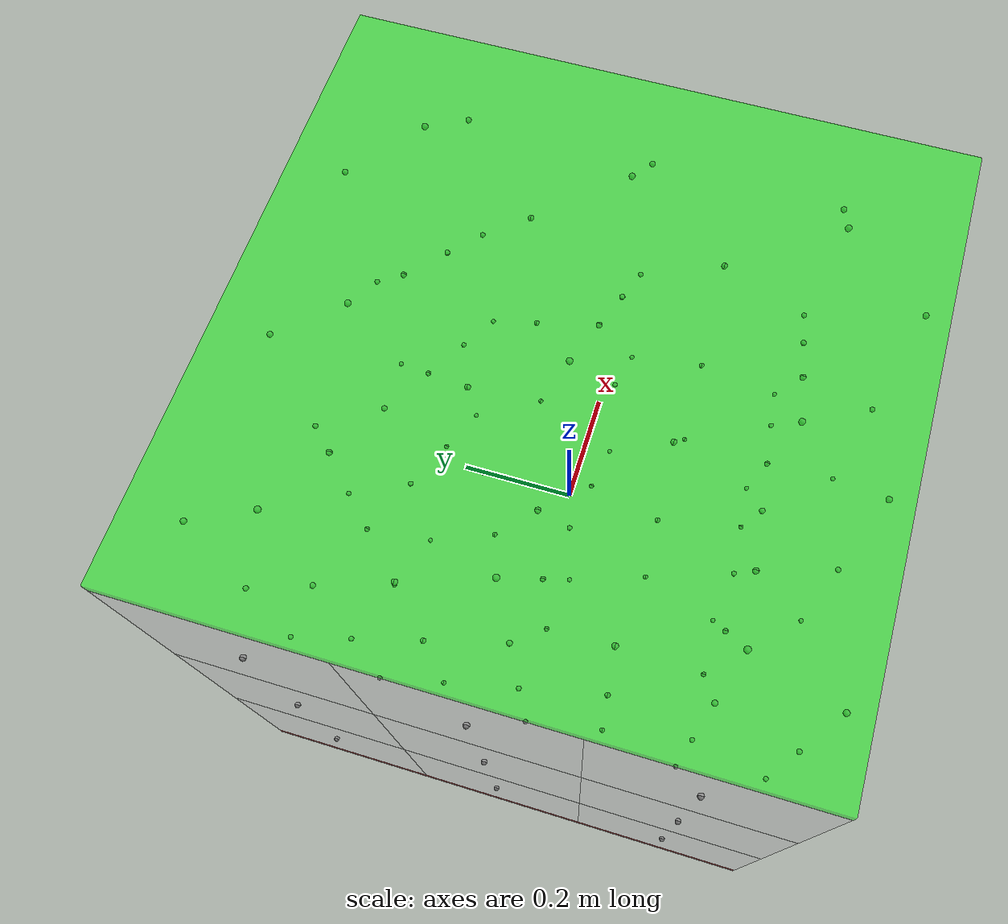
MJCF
<mujoco model="stiffness_test">
  <option integrator="implicitfast" timestep="0.001" gravity="0 0 0"><flag contact="enable"/></option>
  <default>
    <joint armature="0.01" damping="5.0"/>
    <geom friction="0.8" solref="0.02 1.0" solimp="0.9 0.95 0.001"/>
  </default>
  <worldbody>
    <light pos="0 0 5" dir="0 0 -1"/>
    <body name="BUnitBlock">
      <body name="b_bunitblock_0_0_0" pos="-0.33333 -0.33333 -0.33333">
        <joint type="slide" axis="1 0 0"/>
        <joint type="slide" axis="0 1 0"/>
        <joint type="slide" axis="0 0 1"/>
        <joint type="ball"/>
        <geom type="box" size="0.16667 0.16667 0.16667" mass="0.037036" rgba="0.9 0.9 0.9 0.5" contype="2" conaffinity="5" friction="0.8" solref="2.137679884733914 0.029221532980609206" solimp="0.006535260076180927 0.20329863348244356 0.002904285626645951 0.2325599963959532 3.3014774263521036"/>
        <site name="s_BUnitBlock_0_0_0_PX" pos="0.16667 0 0"/>
        <site name="s_BUnitBlock_0_0_0_NX" pos="-0.16667 0 0"/>
        <site name="s_BUnitBlock_0_0_0_PY" pos="0 0.16667 0"/>
        <site name="s_BUnitBlock_0_0_0_NY" pos="0 -0.16667 0"/>
        <site name="s_BUnitBlock_0_0_0_PZ" pos="0 0 0.16667"/>
        <site name="s_BUnitBlock_0_0_0_NZ" pos="0 0 -0.16667"/>
      </body>
      <body name="b_bunitblock_0_0_1" pos="-0.33333 -0.33333 0.00000">
        <joint type="slide" axis="1 0 0"/>
        <joint type="slide" axis="0 1 0"/>
        <joint type="slide" axis="0 0 1"/>
        <joint type="ball"/>
        <geom type="box" size="0.16667 0.16667 0.16667" mass="0.037037" rgba="0.9 0.9 0.9 0.5" contype="2" conaffinity="5" friction="0.8" solref="2.137679884733914 0.029221532980609206" solimp="0.006535260076180927 0.20329863348244356 0.002904285626645951 0.2325599963959532 3.3014774263521036"/>
        <site name="s_BUnitBlock_0_0_1_PX" pos="0.16667 0 0"/>
        <site name="s_BUnitBlock_0_0_1_NX" pos="-0.16667 0 0"/>
        <site name="s_BUnitBlock_0_0_1_PY" pos="0 0.16667 0"/>
        <site name="s_BUnitBlock_0_0_1_NY" pos="0 -0.16667 0"/>
        <site name="s_BUnitBlock_0_0_1_PZ" pos="0 0 0.16667"/>
        <site name="s_BUnitBlock_0_0_1_NZ" pos="0 0 -0.16667"/>
      </body>
      <body name="b_bunitblock_0_0_2" pos="-0.33333 -0.33333 0.33333">
        <joint type="slide" axis="1 0 0"/>
        <joint type="slide" axis="0 1 0"/>
        <joint type="slide" axis="0 0 1"/>
        <joint type="ball"/>
        <geom type="box" size="0.16667 0.16667 0.16667" mass="0.037036" rgba="0.9 0.9 0.9 0.5" contype="2" conaffinity="5" friction="0.8" solref="2.137679884733914 0.029221532980609206" solimp="0.006535260076180927 0.20329863348244356 0.002904285626645951 0.2325599963959532 3.3014774263521036"/>
        <site name="s_BUnitBlock_0_0_2_PX" pos="0.16667 0 0"/>
        <site name="s_BUnitBlock_0_0_2_NX" pos="-0.16667 0 0"/>
        <site name="s_BUnitBlock_0_0_2_PY" pos="0 0.16667 0"/>
        <site name="s_BUnitBlock_0_0_2_NY" pos="0 -0.16667 0"/>
        <site name="s_BUnitBlock_0_0_2_PZ" pos="0 0 0.16667"/>
        <site name="s_BUnitBlock_0_0_2_NZ" pos="0 0 -0.16667"/>
      </body>
      <body name="b_bunitblock_0_1_0" pos="-0.33333 0.00000 -0.33333">
        <joint type="slide" axis="1 0 0"/>
        <joint type="slide" axis="0 1 0"/>
        <joint type="slide" axis="0 0 1"/>
        <joint type="ball"/>
        <geom type="box" size="0.16667 0.16667 0.16667" mass="0.037037" rgba="0.9 0.9 0.9 0.5" contype="2" conaffinity="5" friction="0.8" solref="2.137679884733914 0.029221532980609206" solimp="0.006535260076180927 0.20329863348244356 0.002904285626645951 0.2325599963959532 3.3014774263521036"/>
        <site name="s_BUnitBlock_0_1_0_PX" pos="0.16667 0 0"/>
        <site name="s_BUnitBlock_0_1_0_NX" pos="-0.16667 0 0"/>
        <site name="s_BUnitBlock_0_1_0_PY" pos="0 0.16667 0"/>
        <site name="s_BUnitBlock_0_1_0_NY" pos="0 -0.16667 0"/>
        <site name="s_BUnitBlock_0_1_0_PZ" pos="0 0 0.16667"/>
        <site name="s_BUnitBlock_0_1_0_NZ" pos="0 0 -0.16667"/>
      </body>
      <body name="b_bunitblock_0_1_1" pos="-0.33333 0.00000 0.00000">
        <joint type="slide" axis="1 0 0"/>
        <joint type="slide" axis="0 1 0"/>
        <joint type="slide" axis="0 0 1"/>
        <joint type="ball"/>
        <geom type="box" size="0.16667 0.16667 0.16667" mass="0.037038" rgba="0.9 0.9 0.9 0.5" contype="2" conaffinity="5" friction="0.8" solref="2.137679884733914 0.029221532980609206" solimp="0.006535260076180927 0.20329863348244356 0.002904285626645951 0.2325599963959532 3.3014774263521036"/>
        <site name="s_BUnitBlock_0_1_1_PX" pos="0.16667 0 0"/>
        <site name="s_BUnitBlock_0_1_1_NX" pos="-0.16667 0 0"/>
        <site name="s_BUnitBlock_0_1_1_PY" pos="0 0.16667 0"/>
        <site name="s_BUnitBlock_0_1_1_NY" pos="0 -0.16667 0"/>
        <site name="s_BUnitBlock_0_1_1_PZ" pos="0 0 0.16667"/>
        <site name="s_BUnitBlock_0_1_1_NZ" pos="0 0 -0.16667"/>
      </body>
      <body name="b_bunitblock_0_1_2" pos="-0.33333 0.00000 0.33333">
        <joint type="slide" axis="1 0 0"/>
        <joint type="slide" axis="0 1 0"/>
        <joint type="slide" axis="0 0 1"/>
        <joint type="ball"/>
        <geom type="box" size="0.16667 0.16667 0.16667" mass="0.037037" rgba="0.9 0.9 0.9 0.5" contype="2" conaffinity="5" friction="0.8" solref="2.137679884733914 0.029221532980609206" solimp="0.006535260076180927 0.20329863348244356 0.002904285626645951 0.2325599963959532 3.3014774263521036"/>
        <site name="s_BUnitBlock_0_1_2_PX" pos="0.16667 0 0"/>
        <site name="s_BUnitBlock_0_1_2_NX" pos="-0.16667 0 0"/>
        <site name="s_BUnitBlock_0_1_2_PY" pos="0 0.16667 0"/>
        <site name="s_BUnitBlock_0_1_2_NY" pos="0 -0.16667 0"/>
        <site name="s_BUnitBlock_0_1_2_PZ" pos="0 0 0.16667"/>
        <site name="s_BUnitBlock_0_1_2_NZ" pos="0 0 -0.16667"/>
      </body>
      <body name="b_bunitblock_0_2_0" pos="-0.33333 0.33333 -0.33333">
        <joint type="slide" axis="1 0 0"/>
        <joint type="slide" axis="0 1 0"/>
        <joint type="slide" axis="0 0 1"/>
        <joint type="ball"/>
        <geom type="box" size="0.16667 0.16667 0.16667" mass="0.037036" rgba="0.9 0.9 0.9 0.5" contype="2" conaffinity="5" friction="0.8" solref="2.137679884733914 0.029221532980609206" solimp="0.006535260076180927 0.20329863348244356 0.002904285626645951 0.2325599963959532 3.3014774263521036"/>
        <site name="s_BUnitBlock_0_2_0_PX" pos="0.16667 0 0"/>
        <site name="s_BUnitBlock_0_2_0_NX" pos="-0.16667 0 0"/>
        <site name="s_BUnitBlock_0_2_0_PY" pos="0 0.16667 0"/>
        <site name="s_BUnitBlock_0_2_0_NY" pos="0 -0.16667 0"/>
        <site name="s_BUnitBlock_0_2_0_PZ" pos="0 0 0.16667"/>
        <site name="s_BUnitBlock_0_2_0_NZ" pos="0 0 -0.16667"/>
      </body>
      <body name="b_bunitblock_0_2_1" pos="-0.33333 0.33333 0.00000">
        <joint type="slide" axis="1 0 0"/>
        <joint type="slide" axis="0 1 0"/>
        <joint type="slide" axis="0 0 1"/>
        <joint type="ball"/>
        <geom type="box" size="0.16667 0.16667 0.16667" mass="0.037037" rgba="0.9 0.9 0.9 0.5" contype="2" conaffinity="5" friction="0.8" solref="2.137679884733914 0.029221532980609206" solimp="0.006535260076180927 0.20329863348244356 0.002904285626645951 0.2325599963959532 3.3014774263521036"/>
        <site name="s_BUnitBlock_0_2_1_PX" pos="0.16667 0 0"/>
        <site name="s_BUnitBlock_0_2_1_NX" pos="-0.16667 0 0"/>
        <site name="s_BUnitBlock_0_2_1_PY" pos="0 0.16667 0"/>
        <site name="s_BUnitBlock_0_2_1_NY" pos="0 -0.16667 0"/>
        <site name="s_BUnitBlock_0_2_1_PZ" pos="0 0 0.16667"/>
        <site name="s_BUnitBlock_0_2_1_NZ" pos="0 0 -0.16667"/>
      </body>
      <body name="b_bunitblock_0_2_2" pos="-0.33333 0.33333 0.33333">
        <joint type="slide" axis="1 0 0"/>
        <joint type="slide" axis="0 1 0"/>
        <joint type="slide" axis="0 0 1"/>
        <joint type="ball"/>
        <geom type="box" size="0.16667 0.16667 0.16667" mass="0.037036" rgba="0.9 0.9 0.9 0.5" contype="2" conaffinity="5" friction="0.8" solref="2.137679884733914 0.029221532980609206" solimp="0.006535260076180927 0.20329863348244356 0.002904285626645951 0.2325599963959532 3.3014774263521036"/>
        <site name="s_BUnitBlock_0_2_2_PX" pos="0.16667 0 0"/>
        <site name="s_BUnitBlock_0_2_2_NX" pos="-0.16667 0 0"/>
        <site name="s_BUnitBlock_0_2_2_PY" pos="0 0.16667 0"/>
        <site name="s_BUnitBlock_0_2_2_NY" pos="0 -0.16667 0"/>
        <site name="s_BUnitBlock_0_2_2_PZ" pos="0 0 0.16667"/>
        <site name="s_BUnitBlock_0_2_2_NZ" pos="0 0 -0.16667"/>
      </body>
      <body name="b_bunitblock_1_0_0" pos="0.00000 -0.33333 -0.33333">
        <joint type="slide" axis="1 0 0"/>
        <joint type="slide" axis="0 1 0"/>
        <joint type="slide" axis="0 0 1"/>
        <joint type="ball"/>
        <geom type="box" size="0.16667 0.16667 0.16667" mass="0.037037" rgba="0.9 0.9 0.9 0.5" contype="2" conaffinity="5" friction="0.8" solref="2.137679884733914 0.029221532980609206" solimp="0.006535260076180927 0.20329863348244356 0.002904285626645951 0.2325599963959532 3.3014774263521036"/>
        <site name="s_BUnitBlock_1_0_0_PX" pos="0.16667 0 0"/>
        <site name="s_BUnitBlock_1_0_0_NX" pos="-0.16667 0 0"/>
        <site name="s_BUnitBlock_1_0_0_PY" pos="0 0.16667 0"/>
        <site name="s_BUnitBlock_1_0_0_NY" pos="0 -0.16667 0"/>
        <site name="s_BUnitBlock_1_0_0_PZ" pos="0 0 0.16667"/>
        <site name="s_BUnitBlock_1_0_0_NZ" pos="0 0 -0.16667"/>
      </body>
      <body name="b_bunitblock_1_0_1" pos="0.00000 -0.33333 0.00000">
        <joint type="slide" axis="1 0 0"/>
        <joint type="slide" axis="0 1 0"/>
        <joint type="slide" axis="0 0 1"/>
        <joint type="ball"/>
        <geom type="box" size="0.16667 0.16667 0.16667" mass="0.037038" rgba="0.9 0.9 0.9 0.5" contype="2" conaffinity="5" friction="0.8" solref="2.137679884733914 0.029221532980609206" solimp="0.006535260076180927 0.20329863348244356 0.002904285626645951 0.2325599963959532 3.3014774263521036"/>
        <site name="s_BUnitBlock_1_0_1_PX" pos="0.16667 0 0"/>
        <site name="s_BUnitBlock_1_0_1_NX" pos="-0.16667 0 0"/>
        <site name="s_BUnitBlock_1_0_1_PY" pos="0 0.16667 0"/>
        <site name="s_BUnitBlock_1_0_1_NY" pos="0 -0.16667 0"/>
        <site name="s_BUnitBlock_1_0_1_PZ" pos="0 0 0.16667"/>
        <site name="s_BUnitBlock_1_0_1_NZ" pos="0 0 -0.16667"/>
      </body>
      <body name="b_bunitblock_1_0_2" pos="0.00000 -0.33333 0.33333">
        <joint type="slide" axis="1 0 0"/>
        <joint type="slide" axis="0 1 0"/>
        <joint type="slide" axis="0 0 1"/>
        <joint type="ball"/>
        <geom type="box" size="0.16667 0.16667 0.16667" mass="0.037037" rgba="0.9 0.9 0.9 0.5" contype="2" conaffinity="5" friction="0.8" solref="2.137679884733914 0.029221532980609206" solimp="0.006535260076180927 0.20329863348244356 0.002904285626645951 0.2325599963959532 3.3014774263521036"/>
        <site name="s_BUnitBlock_1_0_2_PX" pos="0.16667 0 0"/>
        <site name="s_BUnitBlock_1_0_2_NX" pos="-0.16667 0 0"/>
        <site name="s_BUnitBlock_1_0_2_PY" pos="0 0.16667 0"/>
        <site name="s_BUnitBlock_1_0_2_NY" pos="0 -0.16667 0"/>
        <site name="s_BUnitBlock_1_0_2_PZ" pos="0 0 0.16667"/>
        <site name="s_BUnitBlock_1_0_2_NZ" pos="0 0 -0.16667"/>
      </body>
      <body name="b_bunitblock_1_1_0" pos="0.00000 0.00000 -0.33333">
        <joint type="slide" axis="1 0 0"/>
        <joint type="slide" axis="0 1 0"/>
        <joint type="slide" axis="0 0 1"/>
        <joint type="ball"/>
        <geom type="box" size="0.16667 0.16667 0.16667" mass="0.037038" rgba="0.9 0.9 0.9 0.5" contype="2" conaffinity="5" friction="0.8" solref="2.137679884733914 0.029221532980609206" solimp="0.006535260076180927 0.20329863348244356 0.002904285626645951 0.2325599963959532 3.3014774263521036"/>
        <site name="s_BUnitBlock_1_1_0_PX" pos="0.16667 0 0"/>
        <site name="s_BUnitBlock_1_1_0_NX" pos="-0.16667 0 0"/>
        <site name="s_BUnitBlock_1_1_0_PY" pos="0 0.16667 0"/>
        <site name="s_BUnitBlock_1_1_0_NY" pos="0 -0.16667 0"/>
        <site name="s_BUnitBlock_1_1_0_PZ" pos="0 0 0.16667"/>
        <site name="s_BUnitBlock_1_1_0_NZ" pos="0 0 -0.16667"/>
      </body>
      <body name="b_bunitblock_1_1_1" pos="0.00000 0.00000 0.00000">
        <joint type="slide" axis="1 0 0"/>
        <joint type="slide" axis="0 1 0"/>
        <joint type="slide" axis="0 0 1"/>
        <joint type="ball"/>
        <geom type="box" size="0.16667 0.16667 0.16667" mass="0.037039" rgba="0.9 0.9 0.9 0.5" contype="2" conaffinity="5" friction="0.8" solref="2.137679884733914 0.029221532980609206" solimp="0.006535260076180927 0.20329863348244356 0.002904285626645951 0.2325599963959532 3.3014774263521036"/>
        <site name="s_BUnitBlock_1_1_1_PX" pos="0.16667 0 0"/>
        <site name="s_BUnitBlock_1_1_1_NX" pos="-0.16667 0 0"/>
        <site name="s_BUnitBlock_1_1_1_PY" pos="0 0.16667 0"/>
        <site name="s_BUnitBlock_1_1_1_NY" pos="0 -0.16667 0"/>
        <site name="s_BUnitBlock_1_1_1_PZ" pos="0 0 0.16667"/>
        <site name="s_BUnitBlock_1_1_1_NZ" pos="0 0 -0.16667"/>
      </body>
      <body name="b_bunitblock_1_1_2" pos="0.00000 0.00000 0.33333">
        <joint type="slide" axis="1 0 0"/>
        <joint type="slide" axis="0 1 0"/>
        <joint type="slide" axis="0 0 1"/>
        <joint type="ball"/>
        <geom type="box" size="0.16667 0.16667 0.16667" mass="0.037038" rgba="0.9 0.9 0.9 0.5" contype="2" conaffinity="5" friction="0.8" solref="2.137679884733914 0.029221532980609206" solimp="0.006535260076180927 0.20329863348244356 0.002904285626645951 0.2325599963959532 3.3014774263521036"/>
        <site name="s_BUnitBlock_1_1_2_PX" pos="0.16667 0 0"/>
        <site name="s_BUnitBlock_1_1_2_NX" pos="-0.16667 0 0"/>
        <site name="s_BUnitBlock_1_1_2_PY" pos="0 0.16667 0"/>
        <site name="s_BUnitBlock_1_1_2_NY" pos="0 -0.16667 0"/>
        <site name="s_BUnitBlock_1_1_2_PZ" pos="0 0 0.16667"/>
        <site name="s_BUnitBlock_1_1_2_NZ" pos="0 0 -0.16667"/>
      </body>
      <body name="b_bunitblock_1_2_0" pos="0.00000 0.33333 -0.33333">
        <joint type="slide" axis="1 0 0"/>
        <joint type="slide" axis="0 1 0"/>
        <joint type="slide" axis="0 0 1"/>
        <joint type="ball"/>
        <geom type="box" size="0.16667 0.16667 0.16667" mass="0.037037" rgba="0.9 0.9 0.9 0.5" contype="2" conaffinity="5" friction="0.8" solref="2.137679884733914 0.029221532980609206" solimp="0.006535260076180927 0.20329863348244356 0.002904285626645951 0.2325599963959532 3.3014774263521036"/>
        <site name="s_BUnitBlock_1_2_0_PX" pos="0.16667 0 0"/>
        <site name="s_BUnitBlock_1_2_0_NX" pos="-0.16667 0 0"/>
        <site name="s_BUnitBlock_1_2_0_PY" pos="0 0.16667 0"/>
        <site name="s_BUnitBlock_1_2_0_NY" pos="0 -0.16667 0"/>
        <site name="s_BUnitBlock_1_2_0_PZ" pos="0 0 0.16667"/>
        <site name="s_BUnitBlock_1_2_0_NZ" pos="0 0 -0.16667"/>
      </body>
      <body name="b_bunitblock_1_2_1" pos="0.00000 0.33333 0.00000">
        <joint type="slide" axis="1 0 0"/>
        <joint type="slide" axis="0 1 0"/>
        <joint type="slide" axis="0 0 1"/>
        <joint type="ball"/>
        <geom type="box" size="0.16667 0.16667 0.16667" mass="0.037038" rgba="0.9 0.9 0.9 0.5" contype="2" conaffinity="5" friction="0.8" solref="2.137679884733914 0.029221532980609206" solimp="0.006535260076180927 0.20329863348244356 0.002904285626645951 0.2325599963959532 3.3014774263521036"/>
        <site name="s_BUnitBlock_1_2_1_PX" pos="0.16667 0 0"/>
        <site name="s_BUnitBlock_1_2_1_NX" pos="-0.16667 0 0"/>
        <site name="s_BUnitBlock_1_2_1_PY" pos="0 0.16667 0"/>
        <site name="s_BUnitBlock_1_2_1_NY" pos="0 -0.16667 0"/>
        <site name="s_BUnitBlock_1_2_1_PZ" pos="0 0 0.16667"/>
        <site name="s_BUnitBlock_1_2_1_NZ" pos="0 0 -0.16667"/>
      </body>
      <body name="b_bunitblock_1_2_2" pos="0.00000 0.33333 0.33333">
        <joint type="slide" axis="1 0 0"/>
        <joint type="slide" axis="0 1 0"/>
        <joint type="slide" axis="0 0 1"/>
        <joint type="ball"/>
        <geom type="box" size="0.16667 0.16667 0.16667" mass="0.037037" rgba="0.9 0.9 0.9 0.5" contype="2" conaffinity="5" friction="0.8" solref="2.137679884733914 0.029221532980609206" solimp="0.006535260076180927 0.20329863348244356 0.002904285626645951 0.2325599963959532 3.3014774263521036"/>
        <site name="s_BUnitBlock_1_2_2_PX" pos="0.16667 0 0"/>
        <site name="s_BUnitBlock_1_2_2_NX" pos="-0.16667 0 0"/>
        <site name="s_BUnitBlock_1_2_2_PY" pos="0 0.16667 0"/>
        <site name="s_BUnitBlock_1_2_2_NY" pos="0 -0.16667 0"/>
        <site name="s_BUnitBlock_1_2_2_PZ" pos="0 0 0.16667"/>
        <site name="s_BUnitBlock_1_2_2_NZ" pos="0 0 -0.16667"/>
      </body>
      <body name="b_bunitblock_2_0_0" pos="0.33333 -0.33333 -0.33333">
        <joint type="slide" axis="1 0 0"/>
        <joint type="slide" axis="0 1 0"/>
        <joint type="slide" axis="0 0 1"/>
        <joint type="ball"/>
        <geom type="box" size="0.16667 0.16667 0.16667" mass="0.037036" rgba="0.9 0.9 0.9 0.5" contype="2" conaffinity="5" friction="0.8" solref="2.137679884733914 0.029221532980609206" solimp="0.006535260076180927 0.20329863348244356 0.002904285626645951 0.2325599963959532 3.3014774263521036"/>
        <site name="s_BUnitBlock_2_0_0_PX" pos="0.16667 0 0"/>
        <site name="s_BUnitBlock_2_0_0_NX" pos="-0.16667 0 0"/>
        <site name="s_BUnitBlock_2_0_0_PY" pos="0 0.16667 0"/>
        <site name="s_BUnitBlock_2_0_0_NY" pos="0 -0.16667 0"/>
        <site name="s_BUnitBlock_2_0_0_PZ" pos="0 0 0.16667"/>
        <site name="s_BUnitBlock_2_0_0_NZ" pos="0 0 -0.16667"/>
      </body>
      <body name="b_bunitblock_2_0_1" pos="0.33333 -0.33333 0.00000">
        <joint type="slide" axis="1 0 0"/>
        <joint type="slide" axis="0 1 0"/>
        <joint type="slide" axis="0 0 1"/>
        <joint type="ball"/>
        <geom type="box" size="0.16667 0.16667 0.16667" mass="0.037037" rgba="0.9 0.9 0.9 0.5" contype="2" conaffinity="5" friction="0.8" solref="2.137679884733914 0.029221532980609206" solimp="0.006535260076180927 0.20329863348244356 0.002904285626645951 0.2325599963959532 3.3014774263521036"/>
        <site name="s_BUnitBlock_2_0_1_PX" pos="0.16667 0 0"/>
        <site name="s_BUnitBlock_2_0_1_NX" pos="-0.16667 0 0"/>
        <site name="s_BUnitBlock_2_0_1_PY" pos="0 0.16667 0"/>
        <site name="s_BUnitBlock_2_0_1_NY" pos="0 -0.16667 0"/>
        <site name="s_BUnitBlock_2_0_1_PZ" pos="0 0 0.16667"/>
        <site name="s_BUnitBlock_2_0_1_NZ" pos="0 0 -0.16667"/>
      </body>
      <body name="b_bunitblock_2_0_2" pos="0.33333 -0.33333 0.33333">
        <joint type="slide" axis="1 0 0"/>
        <joint type="slide" axis="0 1 0"/>
        <joint type="slide" axis="0 0 1"/>
        <joint type="ball"/>
        <geom type="box" size="0.16667 0.16667 0.16667" mass="0.037036" rgba="0.9 0.9 0.9 0.5" contype="2" conaffinity="5" friction="0.8" solref="2.137679884733914 0.029221532980609206" solimp="0.006535260076180927 0.20329863348244356 0.002904285626645951 0.2325599963959532 3.3014774263521036"/>
        <site name="s_BUnitBlock_2_0_2_PX" pos="0.16667 0 0"/>
        <site name="s_BUnitBlock_2_0_2_NX" pos="-0.16667 0 0"/>
        <site name="s_BUnitBlock_2_0_2_PY" pos="0 0.16667 0"/>
        <site name="s_BUnitBlock_2_0_2_NY" pos="0 -0.16667 0"/>
        <site name="s_BUnitBlock_2_0_2_PZ" pos="0 0 0.16667"/>
        <site name="s_BUnitBlock_2_0_2_NZ" pos="0 0 -0.16667"/>
      </body>
      <body name="b_bunitblock_2_1_0" pos="0.33333 0.00000 -0.33333">
        <joint type="slide" axis="1 0 0"/>
        <joint type="slide" axis="0 1 0"/>
        <joint type="slide" axis="0 0 1"/>
        <joint type="ball"/>
        <geom type="box" size="0.16667 0.16667 0.16667" mass="0.037037" rgba="0.9 0.9 0.9 0.5" contype="2" conaffinity="5" friction="0.8" solref="2.137679884733914 0.029221532980609206" solimp="0.006535260076180927 0.20329863348244356 0.002904285626645951 0.2325599963959532 3.3014774263521036"/>
        <site name="s_BUnitBlock_2_1_0_PX" pos="0.16667 0 0"/>
        <site name="s_BUnitBlock_2_1_0_NX" pos="-0.16667 0 0"/>
        <site name="s_BUnitBlock_2_1_0_PY" pos="0 0.16667 0"/>
        <site name="s_BUnitBlock_2_1_0_NY" pos="0 -0.16667 0"/>
        <site name="s_BUnitBlock_2_1_0_PZ" pos="0 0 0.16667"/>
        <site name="s_BUnitBlock_2_1_0_NZ" pos="0 0 -0.16667"/>
      </body>
      <body name="b_bunitblock_2_1_1" pos="0.33333 0.00000 0.00000">
        <joint type="slide" axis="1 0 0"/>
        <joint type="slide" axis="0 1 0"/>
        <joint type="slide" axis="0 0 1"/>
        <joint type="ball"/>
        <geom type="box" size="0.16667 0.16667 0.16667" mass="0.037038" rgba="0.9 0.9 0.9 0.5" contype="2" conaffinity="5" friction="0.8" solref="2.137679884733914 0.029221532980609206" solimp="0.006535260076180927 0.20329863348244356 0.002904285626645951 0.2325599963959532 3.3014774263521036"/>
        <site name="s_BUnitBlock_2_1_1_PX" pos="0.16667 0 0"/>
        <site name="s_BUnitBlock_2_1_1_NX" pos="-0.16667 0 0"/>
        <site name="s_BUnitBlock_2_1_1_PY" pos="0 0.16667 0"/>
        <site name="s_BUnitBlock_2_1_1_NY" pos="0 -0.16667 0"/>
        <site name="s_BUnitBlock_2_1_1_PZ" pos="0 0 0.16667"/>
        <site name="s_BUnitBlock_2_1_1_NZ" pos="0 0 -0.16667"/>
      </body>
      <body name="b_bunitblock_2_1_2" pos="0.33333 0.00000 0.33333">
        <joint type="slide" axis="1 0 0"/>
        <joint type="slide" axis="0 1 0"/>
        <joint type="slide" axis="0 0 1"/>
        <joint type="ball"/>
        <geom type="box" size="0.16667 0.16667 0.16667" mass="0.037037" rgba="0.9 0.9 0.9 0.5" contype="2" conaffinity="5" friction="0.8" solref="2.137679884733914 0.029221532980609206" solimp="0.006535260076180927 0.20329863348244356 0.002904285626645951 0.2325599963959532 3.3014774263521036"/>
        <site name="s_BUnitBlock_2_1_2_PX" pos="0.16667 0 0"/>
        <site name="s_BUnitBlock_2_1_2_NX" pos="-0.16667 0 0"/>
        <site name="s_BUnitBlock_2_1_2_PY" pos="0 0.16667 0"/>
        <site name="s_BUnitBlock_2_1_2_NY" pos="0 -0.16667 0"/>
        <site name="s_BUnitBlock_2_1_2_PZ" pos="0 0 0.16667"/>
        <site name="s_BUnitBlock_2_1_2_NZ" pos="0 0 -0.16667"/>
      </body>
      <body name="b_bunitblock_2_2_0" pos="0.33333 0.33333 -0.33333">
        <joint type="slide" axis="1 0 0"/>
        <joint type="slide" axis="0 1 0"/>
        <joint type="slide" axis="0 0 1"/>
        <joint type="ball"/>
        <geom type="box" size="0.16667 0.16667 0.16667" mass="0.037036" rgba="0.9 0.9 0.9 0.5" contype="2" conaffinity="5" friction="0.8" solref="2.137679884733914 0.029221532980609206" solimp="0.006535260076180927 0.20329863348244356 0.002904285626645951 0.2325599963959532 3.3014774263521036"/>
        <site name="s_BUnitBlock_2_2_0_PX" pos="0.16667 0 0"/>
        <site name="s_BUnitBlock_2_2_0_NX" pos="-0.16667 0 0"/>
        <site name="s_BUnitBlock_2_2_0_PY" pos="0 0.16667 0"/>
        <site name="s_BUnitBlock_2_2_0_NY" pos="0 -0.16667 0"/>
        <site name="s_BUnitBlock_2_2_0_PZ" pos="0 0 0.16667"/>
        <site name="s_BUnitBlock_2_2_0_NZ" pos="0 0 -0.16667"/>
      </body>
      <body name="b_bunitblock_2_2_1" pos="0.33333 0.33333 0.00000">
        <joint type="slide" axis="1 0 0"/>
        <joint type="slide" axis="0 1 0"/>
        <joint type="slide" axis="0 0 1"/>
        <joint type="ball"/>
        <geom type="box" size="0.16667 0.16667 0.16667" mass="0.037037" rgba="0.9 0.9 0.9 0.5" contype="2" conaffinity="5" friction="0.8" solref="2.137679884733914 0.029221532980609206" solimp="0.006535260076180927 0.20329863348244356 0.002904285626645951 0.2325599963959532 3.3014774263521036"/>
        <site name="s_BUnitBlock_2_2_1_PX" pos="0.16667 0 0"/>
        <site name="s_BUnitBlock_2_2_1_NX" pos="-0.16667 0 0"/>
        <site name="s_BUnitBlock_2_2_1_PY" pos="0 0.16667 0"/>
        <site name="s_BUnitBlock_2_2_1_NY" pos="0 -0.16667 0"/>
        <site name="s_BUnitBlock_2_2_1_PZ" pos="0 0 0.16667"/>
        <site name="s_BUnitBlock_2_2_1_NZ" pos="0 0 -0.16667"/>
      </body>
      <body name="b_bunitblock_2_2_2" pos="0.33333 0.33333 0.33333">
        <joint type="slide" axis="1 0 0"/>
        <joint type="slide" axis="0 1 0"/>
        <joint type="slide" axis="0 0 1"/>
        <joint type="ball"/>
        <geom type="box" size="0.16667 0.16667 0.16667" mass="0.037036" rgba="0.9 0.9 0.9 0.5" contype="2" conaffinity="5" friction="0.8" solref="2.137679884733914 0.029221532980609206" solimp="0.006535260076180927 0.20329863348244356 0.002904285626645951 0.2325599963959532 3.3014774263521036"/>
        <site name="s_BUnitBlock_2_2_2_PX" pos="0.16667 0 0"/>
        <site name="s_BUnitBlock_2_2_2_NX" pos="-0.16667 0 0"/>
        <site name="s_BUnitBlock_2_2_2_PY" pos="0 0.16667 0"/>
        <site name="s_BUnitBlock_2_2_2_NY" pos="0 -0.16667 0"/>
        <site name="s_BUnitBlock_2_2_2_PZ" pos="0 0 0.16667"/>
        <site name="s_BUnitBlock_2_2_2_NZ" pos="0 0 -0.16667"/>
      </body>
    </body>
    <body name="clamp_B" pos="0 0 -0.511"><geom type="box" size="0.5 0.5 0.01" rgba="1 0 0 0.5" contype="0" conaffinity="0"/></body>
    <body name="ram" pos="0 0 0.511">
      <joint name="ram_z" type="slide" axis="0 0 1"/>
      <geom type="box" size="0.5 0.5 0.01" rgba="0 1 0 0.5" contype="0" conaffinity="0"/>
    </body>
  </worldbody>
  <actuator>
    <position name="act_ram" joint="ram_z" kp="200000000" kv="100000"/>
  </actuator>
  <equality>
        <weld site1="s_BUnitBlock_0_0_0_PX" site2="s_BUnitBlock_1_0_0_NX" solref="2.137679884733914 0.029221532980609206" solimp="0.006535260076180927 0.20329863348244356 0.002904285626645951 0.2325599963959532 3.3014774263521036"/>
        <weld site1="s_BUnitBlock_0_0_0_PY" site2="s_BUnitBlock_0_1_0_NY" solref="2.137679884733914 0.029221532980609206" solimp="0.006535260076180927 0.20329863348244356 0.002904285626645951 0.2325599963959532 3.3014774263521036"/>
        <weld site1="s_BUnitBlock_0_0_0_PZ" site2="s_BUnitBlock_0_0_1_NZ" solref="2.137679884733914 0.029221532980609206" solimp="0.006535260076180927 0.20329863348244356 0.002904285626645951 0.2325599963959532 3.3014774263521036"/>
        <weld site1="s_BUnitBlock_0_0_1_PX" site2="s_BUnitBlock_1_0_1_NX" solref="2.137679884733914 0.029221532980609206" solimp="0.006535260076180927 0.20329863348244356 0.002904285626645951 0.2325599963959532 3.3014774263521036"/>
        <weld site1="s_BUnitBlock_0_0_1_PY" site2="s_BUnitBlock_0_1_1_NY" solref="2.137679884733914 0.029221532980609206" solimp="0.006535260076180927 0.20329863348244356 0.002904285626645951 0.2325599963959532 3.3014774263521036"/>
        <weld site1="s_BUnitBlock_0_0_1_PZ" site2="s_BUnitBlock_0_0_2_NZ" solref="2.137679884733914 0.029221532980609206" solimp="0.006535260076180927 0.20329863348244356 0.002904285626645951 0.2325599963959532 3.3014774263521036"/>
        <weld site1="s_BUnitBlock_0_0_2_PX" site2="s_BUnitBlock_1_0_2_NX" solref="2.137679884733914 0.029221532980609206" solimp="0.006535260076180927 0.20329863348244356 0.002904285626645951 0.2325599963959532 3.3014774263521036"/>
        <weld site1="s_BUnitBlock_0_0_2_PY" site2="s_BUnitBlock_0_1_2_NY" solref="2.137679884733914 0.029221532980609206" solimp="0.006535260076180927 0.20329863348244356 0.002904285626645951 0.2325599963959532 3.3014774263521036"/>
        <weld site1="s_BUnitBlock_0_1_0_PX" site2="s_BUnitBlock_1_1_0_NX" solref="2.137679884733914 0.029221532980609206" solimp="0.006535260076180927 0.20329863348244356 0.002904285626645951 0.2325599963959532 3.3014774263521036"/>
        <weld site1="s_BUnitBlock_0_1_0_PY" site2="s_BUnitBlock_0_2_0_NY" solref="2.137679884733914 0.029221532980609206" solimp="0.006535260076180927 0.20329863348244356 0.002904285626645951 0.2325599963959532 3.3014774263521036"/>
        <weld site1="s_BUnitBlock_0_1_0_PZ" site2="s_BUnitBlock_0_1_1_NZ" solref="2.137679884733914 0.029221532980609206" solimp="0.006535260076180927 0.20329863348244356 0.002904285626645951 0.2325599963959532 3.3014774263521036"/>
        <weld site1="s_BUnitBlock_0_1_1_PX" site2="s_BUnitBlock_1_1_1_NX" solref="2.137679884733914 0.029221532980609206" solimp="0.006535260076180927 0.20329863348244356 0.002904285626645951 0.2325599963959532 3.3014774263521036"/>
        <weld site1="s_BUnitBlock_0_1_1_PY" site2="s_BUnitBlock_0_2_1_NY" solref="2.137679884733914 0.029221532980609206" solimp="0.006535260076180927 0.20329863348244356 0.002904285626645951 0.2325599963959532 3.3014774263521036"/>
        <weld site1="s_BUnitBlock_0_1_1_PZ" site2="s_BUnitBlock_0_1_2_NZ" solref="2.137679884733914 0.029221532980609206" solimp="0.006535260076180927 0.20329863348244356 0.002904285626645951 0.2325599963959532 3.3014774263521036"/>
        <weld site1="s_BUnitBlock_0_1_2_PX" site2="s_BUnitBlock_1_1_2_NX" solref="2.137679884733914 0.029221532980609206" solimp="0.006535260076180927 0.20329863348244356 0.002904285626645951 0.2325599963959532 3.3014774263521036"/>
        <weld site1="s_BUnitBlock_0_1_2_PY" site2="s_BUnitBlock_0_2_2_NY" solref="2.137679884733914 0.029221532980609206" solimp="0.006535260076180927 0.20329863348244356 0.002904285626645951 0.2325599963959532 3.3014774263521036"/>
        <weld site1="s_BUnitBlock_0_2_0_PX" site2="s_BUnitBlock_1_2_0_NX" solref="2.137679884733914 0.029221532980609206" solimp="0.006535260076180927 0.20329863348244356 0.002904285626645951 0.2325599963959532 3.3014774263521036"/>
        <weld site1="s_BUnitBlock_0_2_0_PZ" site2="s_BUnitBlock_0_2_1_NZ" solref="2.137679884733914 0.029221532980609206" solimp="0.006535260076180927 0.20329863348244356 0.002904285626645951 0.2325599963959532 3.3014774263521036"/>
        <weld site1="s_BUnitBlock_0_2_1_PX" site2="s_BUnitBlock_1_2_1_NX" solref="2.137679884733914 0.029221532980609206" solimp="0.006535260076180927 0.20329863348244356 0.002904285626645951 0.2325599963959532 3.3014774263521036"/>
        <weld site1="s_BUnitBlock_0_2_1_PZ" site2="s_BUnitBlock_0_2_2_NZ" solref="2.137679884733914 0.029221532980609206" solimp="0.006535260076180927 0.20329863348244356 0.002904285626645951 0.2325599963959532 3.3014774263521036"/>
        <weld site1="s_BUnitBlock_0_2_2_PX" site2="s_BUnitBlock_1_2_2_NX" solref="2.137679884733914 0.029221532980609206" solimp="0.006535260076180927 0.20329863348244356 0.002904285626645951 0.2325599963959532 3.3014774263521036"/>
        <weld site1="s_BUnitBlock_1_0_0_PX" site2="s_BUnitBlock_2_0_0_NX" solref="2.137679884733914 0.029221532980609206" solimp="0.006535260076180927 0.20329863348244356 0.002904285626645951 0.2325599963959532 3.3014774263521036"/>
        <weld site1="s_BUnitBlock_1_0_0_PY" site2="s_BUnitBlock_1_1_0_NY" solref="2.137679884733914 0.029221532980609206" solimp="0.006535260076180927 0.20329863348244356 0.002904285626645951 0.2325599963959532 3.3014774263521036"/>
        <weld site1="s_BUnitBlock_1_0_0_PZ" site2="s_BUnitBlock_1_0_1_NZ" solref="2.137679884733914 0.029221532980609206" solimp="0.006535260076180927 0.20329863348244356 0.002904285626645951 0.2325599963959532 3.3014774263521036"/>
        <weld site1="s_BUnitBlock_1_0_1_PX" site2="s_BUnitBlock_2_0_1_NX" solref="2.137679884733914 0.029221532980609206" solimp="0.006535260076180927 0.20329863348244356 0.002904285626645951 0.2325599963959532 3.3014774263521036"/>
        <weld site1="s_BUnitBlock_1_0_1_PY" site2="s_BUnitBlock_1_1_1_NY" solref="2.137679884733914 0.029221532980609206" solimp="0.006535260076180927 0.20329863348244356 0.002904285626645951 0.2325599963959532 3.3014774263521036"/>
        <weld site1="s_BUnitBlock_1_0_1_PZ" site2="s_BUnitBlock_1_0_2_NZ" solref="2.137679884733914 0.029221532980609206" solimp="0.006535260076180927 0.20329863348244356 0.002904285626645951 0.2325599963959532 3.3014774263521036"/>
        <weld site1="s_BUnitBlock_1_0_2_PX" site2="s_BUnitBlock_2_0_2_NX" solref="2.137679884733914 0.029221532980609206" solimp="0.006535260076180927 0.20329863348244356 0.002904285626645951 0.2325599963959532 3.3014774263521036"/>
        <weld site1="s_BUnitBlock_1_0_2_PY" site2="s_BUnitBlock_1_1_2_NY" solref="2.137679884733914 0.029221532980609206" solimp="0.006535260076180927 0.20329863348244356 0.002904285626645951 0.2325599963959532 3.3014774263521036"/>
        <weld site1="s_BUnitBlock_1_1_0_PX" site2="s_BUnitBlock_2_1_0_NX" solref="2.137679884733914 0.029221532980609206" solimp="0.006535260076180927 0.20329863348244356 0.002904285626645951 0.2325599963959532 3.3014774263521036"/>
        <weld site1="s_BUnitBlock_1_1_0_PY" site2="s_BUnitBlock_1_2_0_NY" solref="2.137679884733914 0.029221532980609206" solimp="0.006535260076180927 0.20329863348244356 0.002904285626645951 0.2325599963959532 3.3014774263521036"/>
        <weld site1="s_BUnitBlock_1_1_0_PZ" site2="s_BUnitBlock_1_1_1_NZ" solref="2.137679884733914 0.029221532980609206" solimp="0.006535260076180927 0.20329863348244356 0.002904285626645951 0.2325599963959532 3.3014774263521036"/>
        <weld site1="s_BUnitBlock_1_1_1_PX" site2="s_BUnitBlock_2_1_1_NX" solref="2.137679884733914 0.029221532980609206" solimp="0.006535260076180927 0.20329863348244356 0.002904285626645951 0.2325599963959532 3.3014774263521036"/>
        <weld site1="s_BUnitBlock_1_1_1_PY" site2="s_BUnitBlock_1_2_1_NY" solref="2.137679884733914 0.029221532980609206" solimp="0.006535260076180927 0.20329863348244356 0.002904285626645951 0.2325599963959532 3.3014774263521036"/>
        <weld site1="s_BUnitBlock_1_1_1_PZ" site2="s_BUnitBlock_1_1_2_NZ" solref="2.137679884733914 0.029221532980609206" solimp="0.006535260076180927 0.20329863348244356 0.002904285626645951 0.2325599963959532 3.3014774263521036"/>
        <weld site1="s_BUnitBlock_1_1_2_PX" site2="s_BUnitBlock_2_1_2_NX" solref="2.137679884733914 0.029221532980609206" solimp="0.006535260076180927 0.20329863348244356 0.002904285626645951 0.2325599963959532 3.3014774263521036"/>
        <weld site1="s_BUnitBlock_1_1_2_PY" site2="s_BUnitBlock_1_2_2_NY" solref="2.137679884733914 0.029221532980609206" solimp="0.006535260076180927 0.20329863348244356 0.002904285626645951 0.2325599963959532 3.3014774263521036"/>
        <weld site1="s_BUnitBlock_1_2_0_PX" site2="s_BUnitBlock_2_2_0_NX" solref="2.137679884733914 0.029221532980609206" solimp="0.006535260076180927 0.20329863348244356 0.002904285626645951 0.2325599963959532 3.3014774263521036"/>
        <weld site1="s_BUnitBlock_1_2_0_PZ" site2="s_BUnitBlock_1_2_1_NZ" solref="2.137679884733914 0.029221532980609206" solimp="0.006535260076180927 0.20329863348244356 0.002904285626645951 0.2325599963959532 3.3014774263521036"/>
        <weld site1="s_BUnitBlock_1_2_1_PX" site2="s_BUnitBlock_2_2_1_NX" solref="2.137679884733914 0.029221532980609206" solimp="0.006535260076180927 0.20329863348244356 0.002904285626645951 0.2325599963959532 3.3014774263521036"/>
        <weld site1="s_BUnitBlock_1_2_1_PZ" site2="s_BUnitBlock_1_2_2_NZ" solref="2.137679884733914 0.029221532980609206" solimp="0.006535260076180927 0.20329863348244356 0.002904285626645951 0.2325599963959532 3.3014774263521036"/>
        <weld site1="s_BUnitBlock_1_2_2_PX" site2="s_BUnitBlock_2_2_2_NX" solref="2.137679884733914 0.029221532980609206" solimp="0.006535260076180927 0.20329863348244356 0.002904285626645951 0.2325599963959532 3.3014774263521036"/>
        <weld site1="s_BUnitBlock_2_0_0_PY" site2="s_BUnitBlock_2_1_0_NY" solref="2.137679884733914 0.029221532980609206" solimp="0.006535260076180927 0.20329863348244356 0.002904285626645951 0.2325599963959532 3.3014774263521036"/>
        <weld site1="s_BUnitBlock_2_0_0_PZ" site2="s_BUnitBlock_2_0_1_NZ" solref="2.137679884733914 0.029221532980609206" solimp="0.006535260076180927 0.20329863348244356 0.002904285626645951 0.2325599963959532 3.3014774263521036"/>
        <weld site1="s_BUnitBlock_2_0_1_PY" site2="s_BUnitBlock_2_1_1_NY" solref="2.137679884733914 0.029221532980609206" solimp="0.006535260076180927 0.20329863348244356 0.002904285626645951 0.2325599963959532 3.3014774263521036"/>
        <weld site1="s_BUnitBlock_2_0_1_PZ" site2="s_BUnitBlock_2_0_2_NZ" solref="2.137679884733914 0.029221532980609206" solimp="0.006535260076180927 0.20329863348244356 0.002904285626645951 0.2325599963959532 3.3014774263521036"/>
        <weld site1="s_BUnitBlock_2_0_2_PY" site2="s_BUnitBlock_2_1_2_NY" solref="2.137679884733914 0.029221532980609206" solimp="0.006535260076180927 0.20329863348244356 0.002904285626645951 0.2325599963959532 3.3014774263521036"/>
        <weld site1="s_BUnitBlock_2_1_0_PY" site2="s_BUnitBlock_2_2_0_NY" solref="2.137679884733914 0.029221532980609206" solimp="0.006535260076180927 0.20329863348244356 0.002904285626645951 0.2325599963959532 3.3014774263521036"/>
        <weld site1="s_BUnitBlock_2_1_0_PZ" site2="s_BUnitBlock_2_1_1_NZ" solref="2.137679884733914 0.029221532980609206" solimp="0.006535260076180927 0.20329863348244356 0.002904285626645951 0.2325599963959532 3.3014774263521036"/>
        <weld site1="s_BUnitBlock_2_1_1_PY" site2="s_BUnitBlock_2_2_1_NY" solref="2.137679884733914 0.029221532980609206" solimp="0.006535260076180927 0.20329863348244356 0.002904285626645951 0.2325599963959532 3.3014774263521036"/>
        <weld site1="s_BUnitBlock_2_1_1_PZ" site2="s_BUnitBlock_2_1_2_NZ" solref="2.137679884733914 0.029221532980609206" solimp="0.006535260076180927 0.20329863348244356 0.002904285626645951 0.2325599963959532 3.3014774263521036"/>
        <weld site1="s_BUnitBlock_2_1_2_PY" site2="s_BUnitBlock_2_2_2_NY" solref="2.137679884733914 0.029221532980609206" solimp="0.006535260076180927 0.20329863348244356 0.002904285626645951 0.2325599963959532 3.3014774263521036"/>
        <weld site1="s_BUnitBlock_2_2_0_PZ" site2="s_BUnitBlock_2_2_1_NZ" solref="2.137679884733914 0.029221532980609206" solimp="0.006535260076180927 0.20329863348244356 0.002904285626645951 0.2325599963959532 3.3014774263521036"/>
        <weld site1="s_BUnitBlock_2_2_1_PZ" site2="s_BUnitBlock_2_2_2_NZ" solref="2.137679884733914 0.029221532980609206" solimp="0.006535260076180927 0.20329863348244356 0.002904285626645951 0.2325599963959532 3.3014774263521036"/>
    <weld body1="clamp_B" body2="b_bunitblock_0_0_0" solref="2.137679884733914 0.029221532980609206" solimp="0.006535260076180927 0.20329863348244356 0.002904285626645951 0.2325599963959532 3.3014774263521036"/>
    <weld body1="ram" body2="b_bunitblock_0_0_2" solref="2.137679884733914 0.029221532980609206" solimp="0.006535260076180927 0.20329863348244356 0.002904285626645951 0.2325599963959532 3.3014774263521036"/>
    <weld body1="clamp_B" body2="b_bunitblock_0_1_0" solref="2.137679884733914 0.029221532980609206" solimp="0.006535260076180927 0.20329863348244356 0.002904285626645951 0.2325599963959532 3.3014774263521036"/>
    <weld body1="ram" body2="b_bunitblock_0_1_2" solref="2.137679884733914 0.029221532980609206" solimp="0.006535260076180927 0.20329863348244356 0.002904285626645951 0.2325599963959532 3.3014774263521036"/>
    <weld body1="clamp_B" body2="b_bunitblock_0_2_0" solref="2.137679884733914 0.029221532980609206" solimp="0.006535260076180927 0.20329863348244356 0.002904285626645951 0.2325599963959532 3.3014774263521036"/>
    <weld body1="ram" body2="b_bunitblock_0_2_2" solref="2.137679884733914 0.029221532980609206" solimp="0.006535260076180927 0.20329863348244356 0.002904285626645951 0.2325599963959532 3.3014774263521036"/>
    <weld body1="clamp_B" body2="b_bunitblock_1_0_0" solref="2.137679884733914 0.029221532980609206" solimp="0.006535260076180927 0.20329863348244356 0.002904285626645951 0.2325599963959532 3.3014774263521036"/>
    <weld body1="ram" body2="b_bunitblock_1_0_2" solref="2.137679884733914 0.029221532980609206" solimp="0.006535260076180927 0.20329863348244356 0.002904285626645951 0.2325599963959532 3.3014774263521036"/>
    <weld body1="clamp_B" body2="b_bunitblock_1_1_0" solref="2.137679884733914 0.029221532980609206" solimp="0.006535260076180927 0.20329863348244356 0.002904285626645951 0.2325599963959532 3.3014774263521036"/>
    <weld body1="ram" body2="b_bunitblock_1_1_2" solref="2.137679884733914 0.029221532980609206" solimp="0.006535260076180927 0.20329863348244356 0.002904285626645951 0.2325599963959532 3.3014774263521036"/>
    <weld body1="clamp_B" body2="b_bunitblock_1_2_0" solref="2.137679884733914 0.029221532980609206" solimp="0.006535260076180927 0.20329863348244356 0.002904285626645951 0.2325599963959532 3.3014774263521036"/>
    <weld body1="ram" body2="b_bunitblock_1_2_2" solref="2.137679884733914 0.029221532980609206" solimp="0.006535260076180927 0.20329863348244356 0.002904285626645951 0.2325599963959532 3.3014774263521036"/>
    <weld body1="clamp_B" body2="b_bunitblock_2_0_0" solref="2.137679884733914 0.029221532980609206" solimp="0.006535260076180927 0.20329863348244356 0.002904285626645951 0.2325599963959532 3.3014774263521036"/>
    <weld body1="ram" body2="b_bunitblock_2_0_2" solref="2.137679884733914 0.029221532980609206" solimp="0.006535260076180927 0.20329863348244356 0.002904285626645951 0.2325599963959532 3.3014774263521036"/>
    <weld body1="clamp_B" body2="b_bunitblock_2_1_0" solref="2.137679884733914 0.029221532980609206" solimp="0.006535260076180927 0.20329863348244356 0.002904285626645951 0.2325599963959532 3.3014774263521036"/>
    <weld body1="ram" body2="b_bunitblock_2_1_2" solref="2.137679884733914 0.029221532980609206" solimp="0.006535260076180927 0.20329863348244356 0.002904285626645951 0.2325599963959532 3.3014774263521036"/>
    <weld body1="clamp_B" body2="b_bunitblock_2_2_0" solref="2.137679884733914 0.029221532980609206" solimp="0.006535260076180927 0.20329863348244356 0.002904285626645951 0.2325599963959532 3.3014774263521036"/>
    <weld body1="ram" body2="b_bunitblock_2_2_2" solref="2.137679884733914 0.029221532980609206" solimp="0.006535260076180927 0.20329863348244356 0.002904285626645951 0.2325599963959532 3.3014774263521036"/>
  </equality>
</mujoco>
